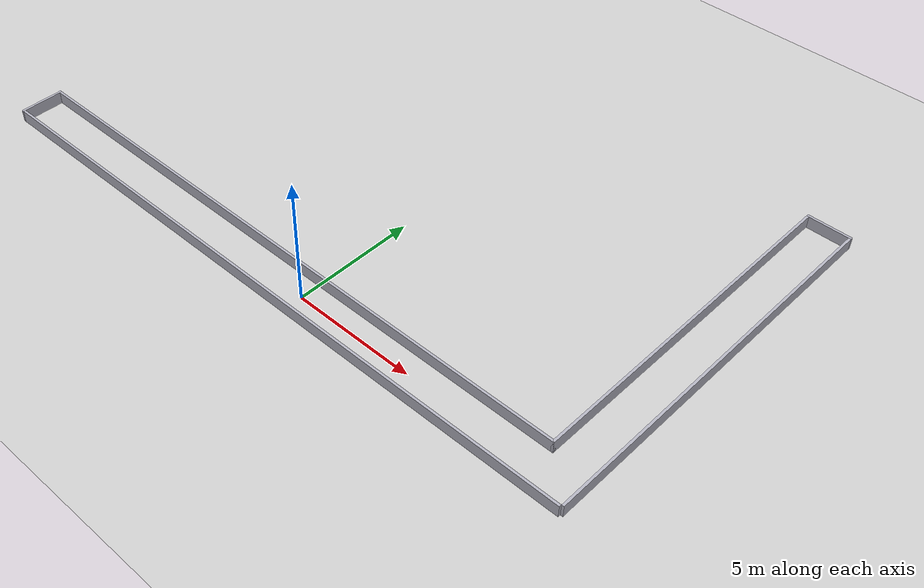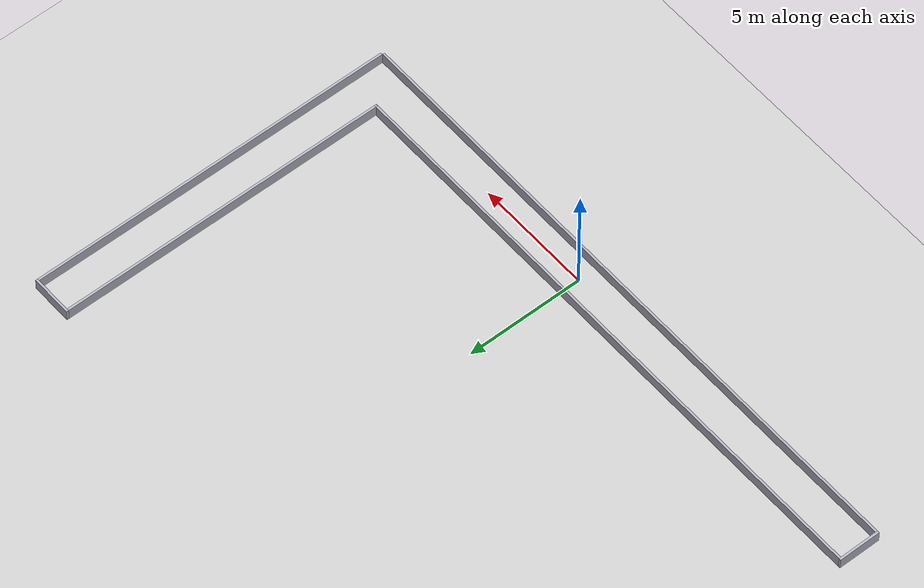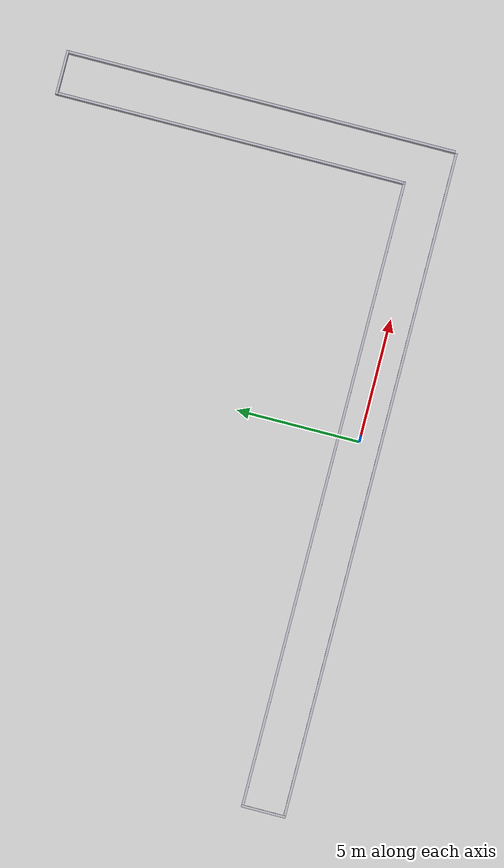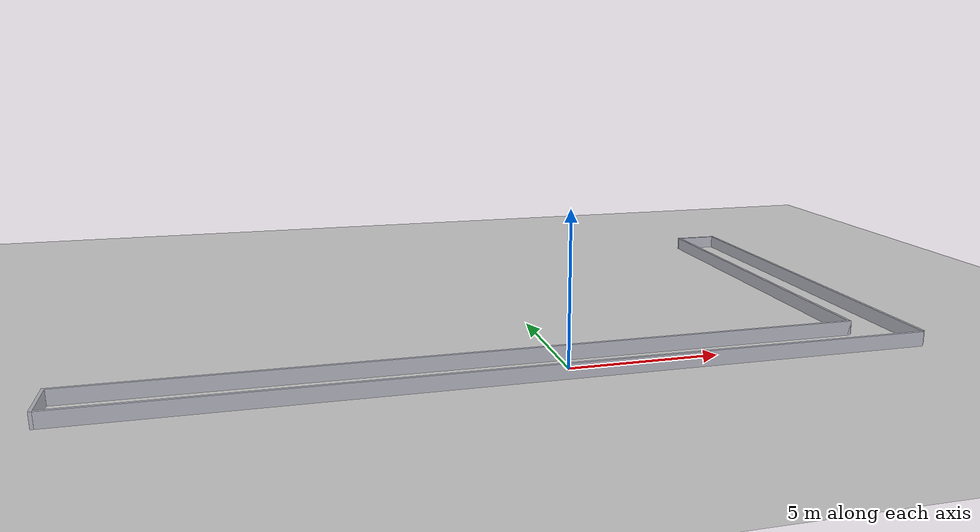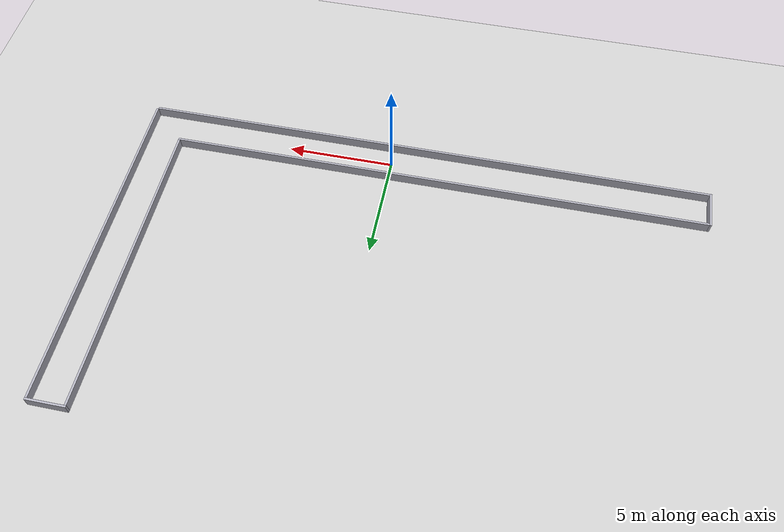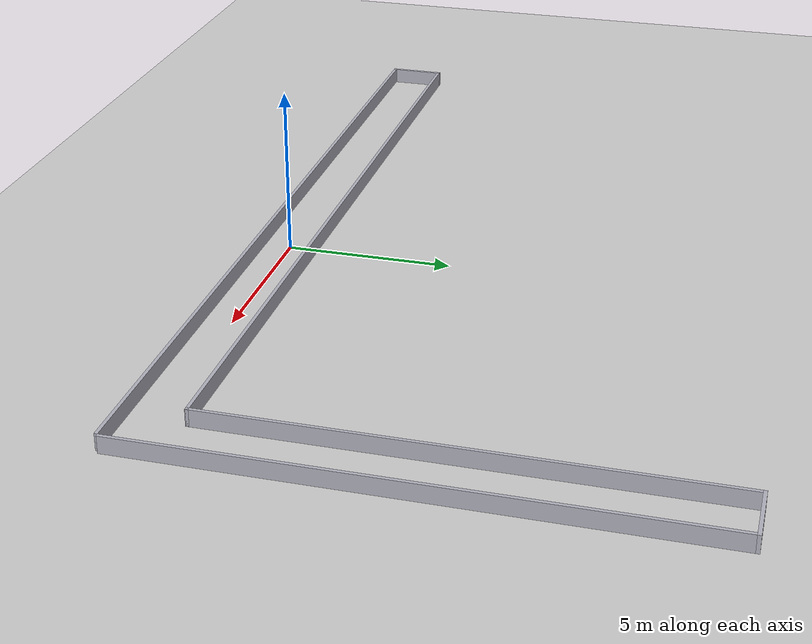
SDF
<?xml version="1.0"?>
<sdf version="1.6">
  <world name="corridor">
    <include><uri>model://ground_plane</uri></include>
    <include><uri>model://sun</uri></include>
    <physics type="ode"><real_time_update_rate>1000.0</real_time_update_rate><max_step_size>0.001</max_step_size></physics>
    <gui><camera name="user_camera"><pose>5.5 -6 14 0 1.0 1.2</pose></camera></gui>
    <model name="corridor">
      <static>true</static>
      <link name="leg1_right">
        <pose>-1.5 -0.85 0.25 0 0 0</pose>
        <collision name="c"><geometry><box><size>27.0 0.1 0.5</size></box></geometry></collision>
        <visual name="v"><geometry><box><size>27.0 0.1 0.5</size></box></geometry><material><ambient>0.7 0.7 0.75 1</ambient><diffuse>0.7 0.7 0.75 1</diffuse></material></visual>
      </link>
      <link name="leg1_left">
        <pose>-2.3 0.85 0.25 0 0 0</pose>
        <collision name="c"><geometry><box><size>25.4 0.1 0.5</size></box></geometry></collision>
        <visual name="v"><geometry><box><size>25.4 0.1 0.5</size></box></geometry><material><ambient>0.7 0.7 0.75 1</ambient><diffuse>0.7 0.7 0.75 1</diffuse></material></visual>
      </link>
      <link name="leg2_left">
        <pose>10.35 7.9 0.25 0 0 0</pose>
        <collision name="c"><geometry><box><size>0.1 14.2 0.5</size></box></geometry></collision>
        <visual name="v"><geometry><box><size>0.1 14.2 0.5</size></box></geometry><material><ambient>0.7 0.7 0.75 1</ambient><diffuse>0.7 0.7 0.75 1</diffuse></material></visual>
      </link>
      <link name="leg2_right">
        <pose>12.05 7.1 0.25 0 0 0</pose>
        <collision name="c"><geometry><box><size>0.1 15.8 0.5</size></box></geometry></collision>
        <visual name="v"><geometry><box><size>0.1 15.8 0.5</size></box></geometry><material><ambient>0.7 0.7 0.75 1</ambient><diffuse>0.7 0.7 0.75 1</diffuse></material></visual>
      </link>
      <link name="cap_start">
        <pose>-15.05 0.0 0.25 0 0 0</pose>
        <collision name="c"><geometry><box><size>0.1 1.8 0.5</size></box></geometry></collision>
        <visual name="v"><geometry><box><size>0.1 1.8 0.5</size></box></geometry><material><ambient>0.7 0.7 0.75 1</ambient><diffuse>0.7 0.7 0.75 1</diffuse></material></visual>
      </link>
      <link name="cap_end">
        <pose>11.2 15.05 0.25 0 0 0</pose>
        <collision name="c"><geometry><box><size>1.8 0.1 0.5</size></box></geometry></collision>
        <visual name="v"><geometry><box><size>1.8 0.1 0.5</size></box></geometry><material><ambient>0.7 0.7 0.75 1</ambient><diffuse>0.7 0.7 0.75 1</diffuse></material></visual>
      </link>
    </model>
  </world>
</sdf>
